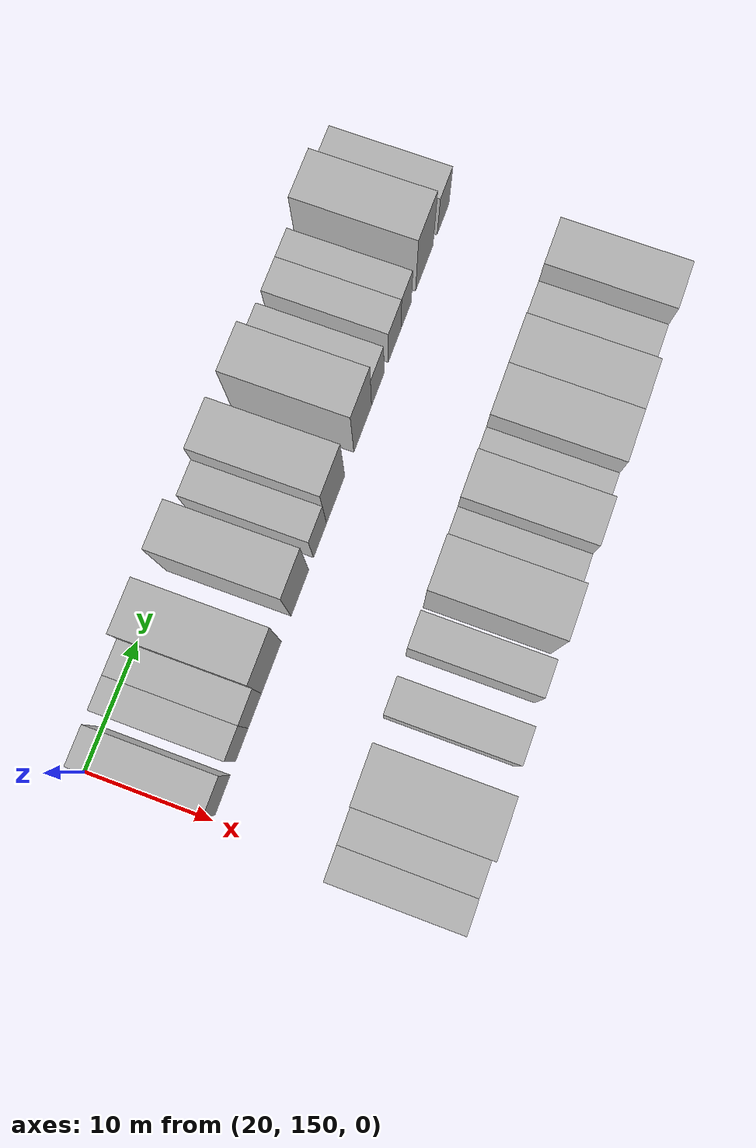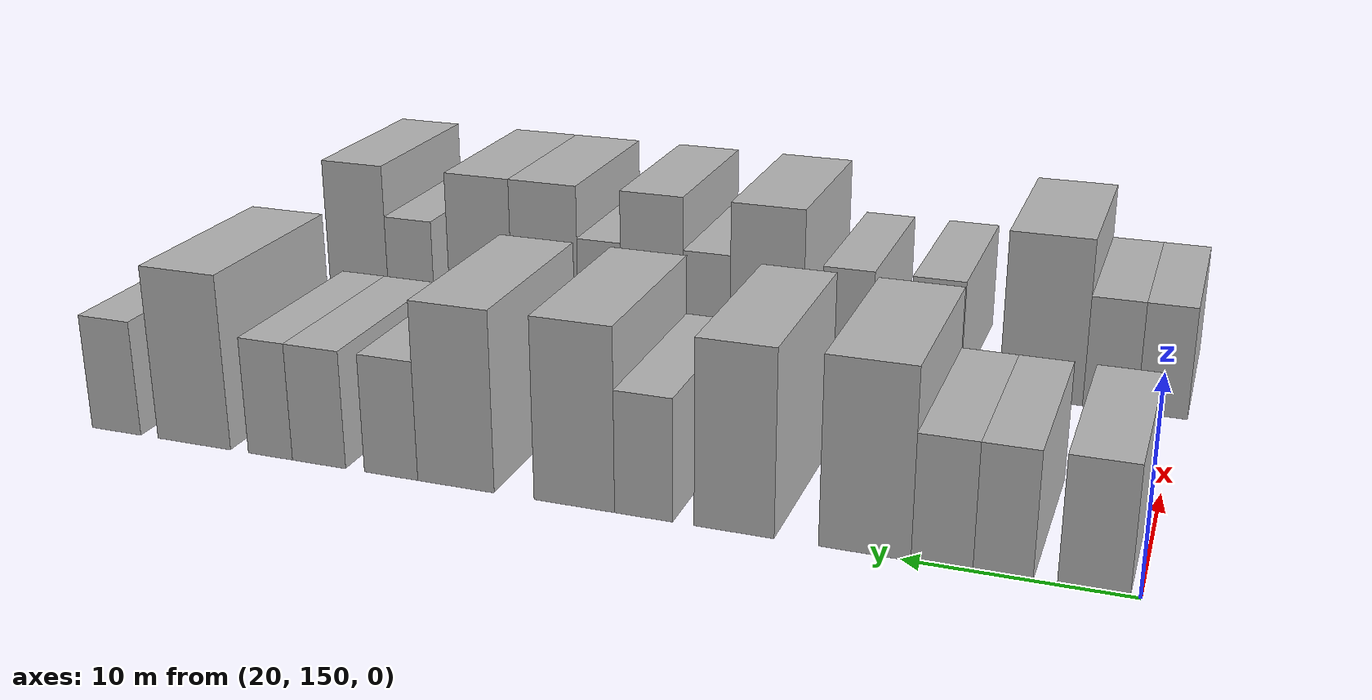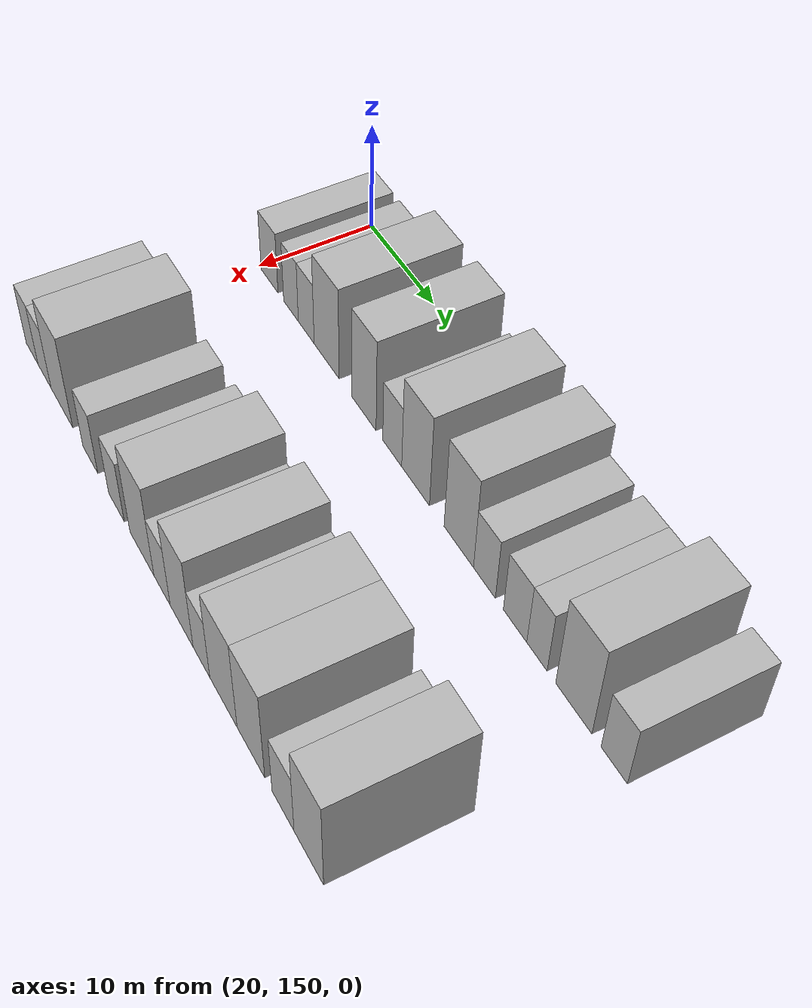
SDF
<sdf version="1.6">
 <world name="default">
  <model name="building_91">
   <static>1</static>
   <pose>25.0000 151.9021 0 0.000000 0.000000 0.000000</pose>
   <link name="link">
    <pose>0 0 3.00 0 0 0</pose>
    <collision name="collision"><geometry><box><size>10.0000 2.9752 6.0000</size></box></geometry></collision>
    <visual name="visual">
     <cast_shadows>0</cast_shadows>
     <geometry><box><size>10.0000 2.9752 6.0000</size></box></geometry>
     <material>
      <script>
       <uri>model://HANNAS_wall/materials/scripts</uri>
       <uri>model://HANNAS_wall/materials/textures</uri>
       <name>vrc/HANNAS_wall</name>
      </script>
     </material>
    </visual>
   </link>
  </model>
  <model name="building_92">
   <static>1</static>
   <pose>25.0000 155.6511 0 0.000000 0.000000 0.000000</pose>
   <link name="link">
    <pose>0 0 3.00 0 0 0</pose>
    <collision name="collision"><geometry><box><size>10.0000 2.5227 6.0000</size></box></geometry></collision>
    <visual name="visual">
     <cast_shadows>0</cast_shadows>
     <geometry><box><size>10.0000 2.5227 6.0000</size></box></geometry>
     <material>
      <script>
       <uri>model://HANNAS_wall/materials/scripts</uri>
       <uri>model://HANNAS_wall/materials/textures</uri>
       <name>vrc/HANNAS_wall</name>
      </script>
     </material>
    </visual>
   </link>
  </model>
  <model name="building_93">
   <static>1</static>
   <pose>25.0000 158.2390 0 0.000000 0.000000 0.000000</pose>
   <link name="link">
    <pose>0 0 3.00 0 0 0</pose>
    <collision name="collision"><geometry><box><size>10.0000 2.6532 6.0000</size></box></geometry></collision>
    <visual name="visual">
     <cast_shadows>0</cast_shadows>
     <geometry><box><size>10.0000 2.6532 6.0000</size></box></geometry>
     <material>
      <script>
       <uri>model://HANNAS_wall/materials/scripts</uri>
       <uri>model://HANNAS_wall/materials/textures</uri>
       <name>vrc/HANNAS_wall</name>
      </script>
     </material>
    </visual>
   </link>
  </model>
  <model name="building_94">
   <static>1</static>
   <pose>25.0000 161.5981 0 0.000000 0.000000 0.000000</pose>
   <link name="link">
    <pose>0 0 4.50 0 0 0</pose>
    <collision name="collision"><geometry><box><size>10.0000 4.0651 9.0000</size></box></geometry></collision>
    <visual name="visual">
     <cast_shadows>0</cast_shadows>
     <geometry><box><size>10.0000 4.0651 9.0000</size></box></geometry>
     <material>
      <script>
       <uri>model://HANNAS_wall/materials/scripts</uri>
       <uri>model://HANNAS_wall/materials/textures</uri>
       <name>vrc/HANNAS_wall</name>
      </script>
     </material>
    </visual>
   </link>
  </model>
  <model name="building_95">
   <static>1</static>
   <pose>25.0000 167.4793 0 0.000000 0.000000 0.000000</pose>
   <link name="link">
    <pose>0 0 4.50 0 0 0</pose>
    <collision name="collision"><geometry><box><size>10.0000 3.6972 9.0000</size></box></geometry></collision>
    <visual name="visual">
     <cast_shadows>0</cast_shadows>
     <geometry><box><size>10.0000 3.6972 9.0000</size></box></geometry>
     <material>
      <script>
       <uri>model://HANNAS_wall/materials/scripts</uri>
       <uri>model://HANNAS_wall/materials/textures</uri>
       <name>vrc/HANNAS_wall</name>
      </script>
     </material>
    </visual>
   </link>
  </model>
  <model name="building_96">
   <static>1</static>
   <pose>25.0000 171.7171 0 0.000000 0.000000 0.000000</pose>
   <link name="link">
    <pose>0 0 3.00 0 0 0</pose>
    <collision name="collision"><geometry><box><size>10.0000 2.7785 6.0000</size></box></geometry></collision>
    <visual name="visual">
     <cast_shadows>0</cast_shadows>
     <geometry><box><size>10.0000 2.7785 6.0000</size></box></geometry>
     <material>
      <script>
       <uri>model://HANNAS_wall/materials/scripts</uri>
       <uri>model://HANNAS_wall/materials/textures</uri>
       <name>vrc/HANNAS_wall</name>
      </script>
     </material>
    </visual>
   </link>
  </model>
  <model name="building_97">
   <static>1</static>
   <pose>25.0000 175.0784 0 0.000000 0.000000 0.000000</pose>
   <link name="link">
    <pose>0 0 4.50 0 0 0</pose>
    <collision name="collision"><geometry><box><size>10.0000 3.9442 9.0000</size></box></geometry></collision>
    <visual name="visual">
     <cast_shadows>0</cast_shadows>
     <geometry><box><size>10.0000 3.9442 9.0000</size></box></geometry>
     <material>
      <script>
       <uri>model://HANNAS_wall/materials/scripts</uri>
       <uri>model://HANNAS_wall/materials/textures</uri>
       <name>vrc/HANNAS_wall</name>
      </script>
     </material>
    </visual>
   </link>
  </model>
  <model name="building_98">
   <static>1</static>
   <pose>25.0000 181.0126 0 0.000000 0.000000 0.000000</pose>
   <link name="link">
    <pose>0 0 4.50 0 0 0</pose>
    <collision name="collision"><geometry><box><size>10.0000 3.9243 9.0000</size></box></geometry></collision>
    <visual name="visual">
     <cast_shadows>0</cast_shadows>
     <geometry><box><size>10.0000 3.9243 9.0000</size></box></geometry>
     <material>
      <script>
       <uri>model://HANNAS_wall/materials/scripts</uri>
       <uri>model://HANNAS_wall/materials/textures</uri>
       <name>vrc/HANNAS_wall</name>
      </script>
     </material>
    </visual>
   </link>
  </model>
  <model name="building_99">
   <static>1</static>
   <pose>25.0000 184.3781 0 0.000000 0.000000 0.000000</pose>
   <link name="link">
    <pose>0 0 3.00 0 0 0</pose>
    <collision name="collision"><geometry><box><size>10.0000 2.8066 6.0000</size></box></geometry></collision>
    <visual name="visual">
     <cast_shadows>0</cast_shadows>
     <geometry><box><size>10.0000 2.8066 6.0000</size></box></geometry>
     <material>
      <script>
       <uri>model://HANNAS_wall/materials/scripts</uri>
       <uri>model://HANNAS_wall/materials/textures</uri>
       <name>vrc/HANNAS_wall</name>
      </script>
     </material>
    </visual>
   </link>
  </model>
  <model name="building_100">
   <static>1</static>
   <pose>25.0000 188.2224 0 0.000000 0.000000 0.000000</pose>
   <link name="link">
    <pose>0 0 3.00 0 0 0</pose>
    <collision name="collision"><geometry><box><size>10.0000 2.8821 6.0000</size></box></geometry></collision>
    <visual name="visual">
     <cast_shadows>0</cast_shadows>
     <geometry><box><size>10.0000 2.8821 6.0000</size></box></geometry>
     <material>
      <script>
       <uri>model://HANNAS_wall/materials/scripts</uri>
       <uri>model://HANNAS_wall/materials/textures</uri>
       <name>vrc/HANNAS_wall</name>
      </script>
     </material>
    </visual>
   </link>
  </model>
  <model name="building_101">
   <static>1</static>
   <pose>25.0000 190.8801 0 0.000000 0.000000 0.000000</pose>
   <link name="link">
    <pose>0 0 3.00 0 0 0</pose>
    <collision name="collision"><geometry><box><size>10.0000 2.4333 6.0000</size></box></geometry></collision>
    <visual name="visual">
     <cast_shadows>0</cast_shadows>
     <geometry><box><size>10.0000 2.4333 6.0000</size></box></geometry>
     <material>
      <script>
       <uri>model://HANNAS_wall/materials/scripts</uri>
       <uri>model://HANNAS_wall/materials/textures</uri>
       <name>vrc/HANNAS_wall</name>
      </script>
     </material>
    </visual>
   </link>
  </model>
  <model name="building_102">
   <static>1</static>
   <pose>25.0000 195.1620 0 0.000000 0.000000 0.000000</pose>
   <link name="link">
    <pose>0 0 4.50 0 0 0</pose>
    <collision name="collision"><geometry><box><size>10.0000 4.1303 9.0000</size></box></geometry></collision>
    <visual name="visual">
     <cast_shadows>0</cast_shadows>
     <geometry><box><size>10.0000 4.1303 9.0000</size></box></geometry>
     <material>
      <script>
       <uri>model://HANNAS_wall/materials/scripts</uri>
       <uri>model://HANNAS_wall/materials/textures</uri>
       <name>vrc/HANNAS_wall</name>
      </script>
     </material>
    </visual>
   </link>
  </model>
  <model name="building_103">
   <static>1</static>
   <pose>25.0000 199.6513 0 0.000000 0.000000 0.000000</pose>
   <link name="link">
    <pose>0 0 3.00 0 0 0</pose>
    <collision name="collision"><geometry><box><size>10.0000 2.8484 6.0000</size></box></geometry></collision>
    <visual name="visual">
     <cast_shadows>0</cast_shadows>
     <geometry><box><size>10.0000 2.8484 6.0000</size></box></geometry>
     <material>
      <script>
       <uri>model://HANNAS_wall/materials/scripts</uri>
       <uri>model://HANNAS_wall/materials/textures</uri>
       <name>vrc/HANNAS_wall</name>
      </script>
     </material>
    </visual>
   </link>
  </model>
  <model name="building_196">
   <static>1</static>
   <pose>44.0000 150.6861 0 0.000000 0.000000 0.000000</pose>
   <link name="link">
    <pose>0 0 3.00 0 0 0</pose>
    <collision name="collision"><geometry><box><size>10.0000 2.5053 6.0000</size></box></geometry></collision>
    <visual name="visual">
     <cast_shadows>0</cast_shadows>
     <geometry><box><size>10.0000 2.5053 6.0000</size></box></geometry>
     <material>
      <script>
       <uri>model://HANNAS_wall/materials/scripts</uri>
       <uri>model://HANNAS_wall/materials/textures</uri>
       <name>vrc/HANNAS_wall</name>
      </script>
     </material>
    </visual>
   </link>
  </model>
  <model name="building_197">
   <static>1</static>
   <pose>44.0000 153.2979 0 0.000000 0.000000 0.000000</pose>
   <link name="link">
    <pose>0 0 3.00 0 0 0</pose>
    <collision name="collision"><geometry><box><size>10.0000 2.7183 6.0000</size></box></geometry></collision>
    <visual name="visual">
     <cast_shadows>0</cast_shadows>
     <geometry><box><size>10.0000 2.7183 6.0000</size></box></geometry>
     <material>
      <script>
       <uri>model://HANNAS_wall/materials/scripts</uri>
       <uri>model://HANNAS_wall/materials/textures</uri>
       <name>vrc/HANNAS_wall</name>
      </script>
     </material>
    </visual>
   </link>
  </model>
  <model name="building_198">
   <static>1</static>
   <pose>44.0000 156.8107 0 0.000000 0.000000 0.000000</pose>
   <link name="link">
    <pose>0 0 4.50 0 0 0</pose>
    <collision name="collision"><geometry><box><size>10.0000 4.3074 9.0000</size></box></geometry></collision>
    <visual name="visual">
     <cast_shadows>0</cast_shadows>
     <geometry><box><size>10.0000 4.3074 9.0000</size></box></geometry>
     <material>
      <script>
       <uri>model://HANNAS_wall/materials/scripts</uri>
       <uri>model://HANNAS_wall/materials/textures</uri>
       <name>vrc/HANNAS_wall</name>
      </script>
     </material>
    </visual>
   </link>
  </model>
  <model name="building_199">
   <static>1</static>
   <pose>44.0000 162.3646 0 0.000000 0.000000 0.000000</pose>
   <link name="link">
    <pose>0 0 3.00 0 0 0</pose>
    <collision name="collision"><geometry><box><size>10.0000 2.8003 6.0000</size></box></geometry></collision>
    <visual name="visual">
     <cast_shadows>0</cast_shadows>
     <geometry><box><size>10.0000 2.8003 6.0000</size></box></geometry>
     <material>
      <script>
       <uri>model://HANNAS_wall/materials/scripts</uri>
       <uri>model://HANNAS_wall/materials/textures</uri>
       <name>vrc/HANNAS_wall</name>
      </script>
     </material>
    </visual>
   </link>
  </model>
  <model name="building_200">
   <static>1</static>
   <pose>44.0000 167.1678 0 0.000000 0.000000 0.000000</pose>
   <link name="link">
    <pose>0 0 3.00 0 0 0</pose>
    <collision name="collision"><geometry><box><size>10.0000 2.8062 6.0000</size></box></geometry></collision>
    <visual name="visual">
     <cast_shadows>0</cast_shadows>
     <geometry><box><size>10.0000 2.8062 6.0000</size></box></geometry>
     <material>
      <script>
       <uri>model://HANNAS_wall/materials/scripts</uri>
       <uri>model://HANNAS_wall/materials/textures</uri>
       <name>vrc/HANNAS_wall</name>
      </script>
     </material>
    </visual>
   </link>
  </model>
  <model name="building_201">
   <static>1</static>
   <pose>44.0000 171.6297 0 0.000000 0.000000 0.000000</pose>
   <link name="link">
    <pose>0 0 4.50 0 0 0</pose>
    <collision name="collision"><geometry><box><size>10.0000 4.1176 9.0000</size></box></geometry></collision>
    <visual name="visual">
     <cast_shadows>0</cast_shadows>
     <geometry><box><size>10.0000 4.1176 9.0000</size></box></geometry>
     <material>
      <script>
       <uri>model://HANNAS_wall/materials/scripts</uri>
       <uri>model://HANNAS_wall/materials/textures</uri>
       <name>vrc/HANNAS_wall</name>
      </script>
     </material>
    </visual>
   </link>
  </model>
  <model name="building_202">
   <static>1</static>
   <pose>44.0000 175.0361 0 0.000000 0.000000 0.000000</pose>
   <link name="link">
    <pose>0 0 3.00 0 0 0</pose>
    <collision name="collision"><geometry><box><size>10.0000 2.6951 6.0000</size></box></geometry></collision>
    <visual name="visual">
     <cast_shadows>0</cast_shadows>
     <geometry><box><size>10.0000 2.6951 6.0000</size></box></geometry>
     <material>
      <script>
       <uri>model://HANNAS_wall/materials/scripts</uri>
       <uri>model://HANNAS_wall/materials/textures</uri>
       <name>vrc/HANNAS_wall</name>
      </script>
     </material>
    </visual>
   </link>
  </model>
  <model name="building_203">
   <static>1</static>
   <pose>44.0000 178.2058 0 0.000000 0.000000 0.000000</pose>
   <link name="link">
    <pose>0 0 4.50 0 0 0</pose>
    <collision name="collision"><geometry><box><size>10.0000 3.6444 9.0000</size></box></geometry></collision>
    <visual name="visual">
     <cast_shadows>0</cast_shadows>
     <geometry><box><size>10.0000 3.6444 9.0000</size></box></geometry>
     <material>
      <script>
       <uri>model://HANNAS_wall/materials/scripts</uri>
       <uri>model://HANNAS_wall/materials/textures</uri>
       <name>vrc/HANNAS_wall</name>
      </script>
     </material>
    </visual>
   </link>
  </model>
  <model name="building_204">
   <static>1</static>
   <pose>44.0000 181.3144 0 0.000000 0.000000 0.000000</pose>
   <link name="link">
    <pose>0 0 3.00 0 0 0</pose>
    <collision name="collision"><geometry><box><size>10.0000 2.5727 6.0000</size></box></geometry></collision>
    <visual name="visual">
     <cast_shadows>0</cast_shadows>
     <geometry><box><size>10.0000 2.5727 6.0000</size></box></geometry>
     <material>
      <script>
       <uri>model://HANNAS_wall/materials/scripts</uri>
       <uri>model://HANNAS_wall/materials/textures</uri>
       <name>vrc/HANNAS_wall</name>
      </script>
     </material>
    </visual>
   </link>
  </model>
  <model name="building_205">
   <static>1</static>
   <pose>44.0000 184.6230 0 0.000000 0.000000 0.000000</pose>
   <link name="link">
    <pose>0 0 4.50 0 0 0</pose>
    <collision name="collision"><geometry><box><size>10.0000 4.0445 9.0000</size></box></geometry></collision>
    <visual name="visual">
     <cast_shadows>0</cast_shadows>
     <geometry><box><size>10.0000 4.0445 9.0000</size></box></geometry>
     <material>
      <script>
       <uri>model://HANNAS_wall/materials/scripts</uri>
       <uri>model://HANNAS_wall/materials/textures</uri>
       <name>vrc/HANNAS_wall</name>
      </script>
     </material>
    </visual>
   </link>
  </model>
  <model name="building_206">
   <static>1</static>
   <pose>44.0000 188.6027 0 0.000000 0.000000 0.000000</pose>
   <link name="link">
    <pose>0 0 4.50 0 0 0</pose>
    <collision name="collision"><geometry><box><size>10.0000 3.9151 9.0000</size></box></geometry></collision>
    <visual name="visual">
     <cast_shadows>0</cast_shadows>
     <geometry><box><size>10.0000 3.9151 9.0000</size></box></geometry>
     <material>
      <script>
       <uri>model://HANNAS_wall/materials/scripts</uri>
       <uri>model://HANNAS_wall/materials/textures</uri>
       <name>vrc/HANNAS_wall</name>
      </script>
     </material>
    </visual>
   </link>
  </model>
  <model name="building_207">
   <static>1</static>
   <pose>44.0000 193.0347 0 0.000000 0.000000 0.000000</pose>
   <link name="link">
    <pose>0 0 3.00 0 0 0</pose>
    <collision name="collision"><geometry><box><size>10.0000 2.9488 6.0000</size></box></geometry></collision>
    <visual name="visual">
     <cast_shadows>0</cast_shadows>
     <geometry><box><size>10.0000 2.9488 6.0000</size></box></geometry>
     <material>
      <script>
       <uri>model://HANNAS_wall/materials/scripts</uri>
       <uri>model://HANNAS_wall/materials/textures</uri>
       <name>vrc/HANNAS_wall</name>
      </script>
     </material>
    </visual>
   </link>
  </model>
  <model name="building_208">
   <static>1</static>
   <pose>44.0000 196.4164 0 0.000000 0.000000 0.000000</pose>
   <link name="link">
    <pose>0 0 4.50 0 0 0</pose>
    <collision name="collision"><geometry><box><size>10.0000 3.8145 9.0000</size></box></geometry></collision>
    <visual name="visual">
     <cast_shadows>0</cast_shadows>
     <geometry><box><size>10.0000 3.8145 9.0000</size></box></geometry>
     <material>
      <script>
       <uri>model://HANNAS_wall/materials/scripts</uri>
       <uri>model://HANNAS_wall/materials/textures</uri>
       <name>vrc/HANNAS_wall</name>
      </script>
     </material>
    </visual>
   </link>
  </model>
 </world>
</sdf>
